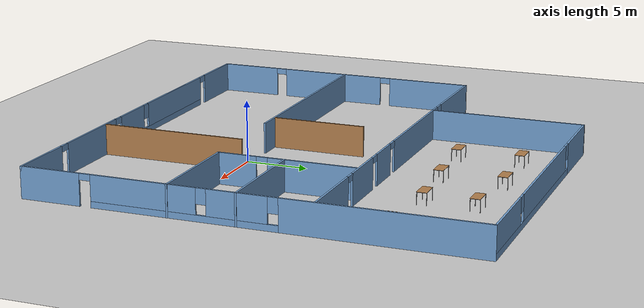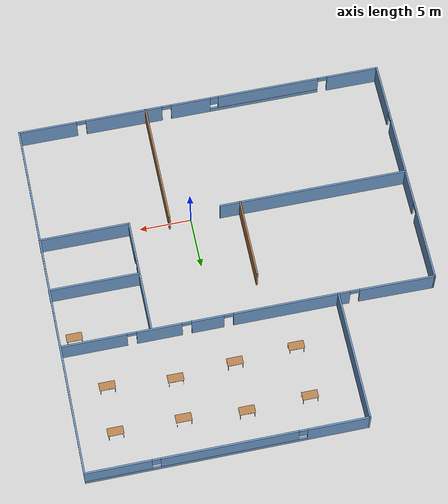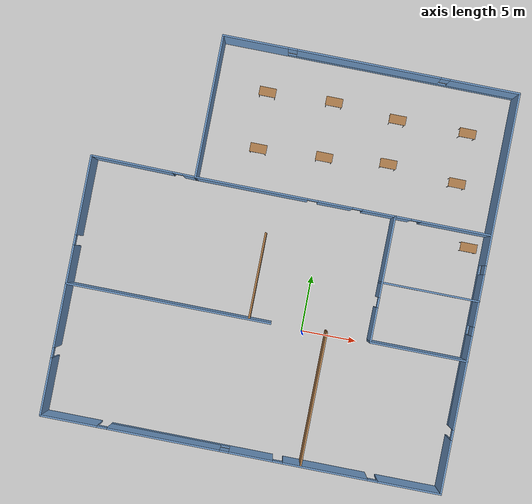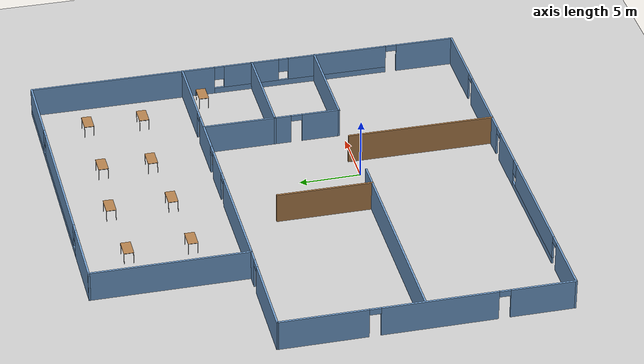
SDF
<sdf version="1.6">
 <world name="default">
  <model name="ground_plane">
   <static>1</static>
   <link name="link">
    <collision name="collision">
     <geometry><plane><normal>0 0 1</normal><size>100 100</size></plane></geometry>
     <surface><friction><ode><mu>100</mu><mu2>50</mu2></ode></friction></surface>
    </collision>
    <visual name="visual">
     <cast_shadows>0</cast_shadows>
     <geometry><plane><normal>0 0 1</normal><size>100 100</size></plane></geometry>
     <material>
      <script><uri>file://media/materials/scripts/gazebo.material</uri><name>Gazebo/Grey</name></script>
     </material>
    </visual>
   </link>
  </model>
  <model name="myhouse">
   <pose>-3.19949 6.33 0 0 -0 0</pose>
   <link name="Wall_0">
    <pose>4.61426 17.8 0 0 -0 0</pose>
    <visual name="Wall_0_Visual_0">
     <pose>-10.3159 0 1.25 0 -0 0</pose>
     <geometry><box><size>5.86818 0.15 2.5</size></box></geometry>
     <material>
      <script><uri>file://media/materials/scripts/gazebo.material</uri><name>Gazebo/Grey</name></script>
      <ambient>0.447059 0.623529 0.811765 1</ambient>
     </material>
     <meta><layer>0</layer></meta>
    </visual>
    <collision name="Wall_0_Collision_0">
     <geometry><box><size>5.86818 0.15 2.5</size></box></geometry>
     <pose>-10.3159 0 1.25 0 -0 0</pose>
    </collision>
    <visual name="Wall_0_Visual_1">
     <pose>2.93409 0 0.25 0 -0 0</pose>
     <geometry><box><size>20.6318 0.15 0.5</size></box></geometry>
     <material>
      <script><uri>file://media/materials/scripts/gazebo.material</uri><name>Gazebo/Grey</name></script>
      <ambient>0.447059 0.623529 0.811765 1</ambient>
     </material>
     <meta><layer>0</layer></meta>
    </visual>
    <collision name="Wall_0_Collision_1">
     <geometry><box><size>20.6318 0.15 0.5</size></box></geometry>
     <pose>2.93409 0 0.25 0 -0 0</pose>
    </collision>
    <visual name="Wall_0_Visual_2">
     <pose>-0.192398 0 1.5 0 -0 0</pose>
     <geometry><box><size>12.7788 0.15 2</size></box></geometry>
     <material>
      <script><uri>file://media/materials/scripts/gazebo.material</uri><name>Gazebo/Grey</name></script>
      <ambient>0.447059 0.623529 0.811765 1</ambient>
     </material>
     <meta><layer>0</layer></meta>
    </visual>
    <collision name="Wall_0_Collision_2">
     <geometry><box><size>12.7788 0.15 2</size></box></geometry>
     <pose>-0.192398 0 1.5 0 -0 0</pose>
    </collision>
    <visual name="Wall_0_Visual_3">
     <pose>10.1235 0 1.5 0 -0 0</pose>
     <geometry><box><size>6.25298 0.15 2</size></box></geometry>
     <material>
      <script><uri>file://media/materials/scripts/gazebo.material</uri><name>Gazebo/Grey</name></script>
      <ambient>0.447059 0.623529 0.811765 1</ambient>
     </material>
     <meta><layer>0</layer></meta>
    </visual>
    <collision name="Wall_0_Collision_3">
     <geometry><box><size>6.25298 0.15 2</size></box></geometry>
     <pose>10.1235 0 1.5 0 -0 0</pose>
    </collision>
    <visual name="Wall_0_Visual_4">
     <pose>-6.98182 0 1.9 0 -0 0</pose>
     <geometry><box><size>0.8 0.15 1.2</size></box></geometry>
     <material>
      <script><uri>file://media/materials/scripts/gazebo.material</uri><name>Gazebo/Grey</name></script>
      <ambient>0.447059 0.623529 0.811765 1</ambient>
     </material>
     <meta><layer>0</layer></meta>
    </visual>
    <collision name="Wall_0_Collision_4">
     <geometry><box><size>0.8 0.15 1.2</size></box></geometry>
     <pose>-6.98182 0 1.9 0 -0 0</pose>
    </collision>
    <visual name="Wall_0_Visual_5">
     <pose>6.59703 0 1.9 0 -0 0</pose>
     <geometry><box><size>0.8 0.15 1.2</size></box></geometry>
     <material>
      <script><uri>file://media/materials/scripts/gazebo.material</uri><name>Gazebo/Grey</name></script>
      <ambient>0.447059 0.623529 0.811765 1</ambient>
     </material>
     <meta><layer>0</layer></meta>
    </visual>
    <collision name="Wall_0_Collision_5">
     <geometry><box><size>0.8 0.15 1.2</size></box></geometry>
     <pose>6.59703 0 1.9 0 -0 0</pose>
    </collision>
   </link>
   <link name="Wall_1">
    <pose>17.7893 -0 0 0 -0 -1.5708</pose>
    <visual name="Wall_1_Visual_0">
     <pose>-10.1951 0 1.25 0 -0 0</pose>
     <geometry><box><size>15.3597 0.15 2.5</size></box></geometry>
     <material>
      <script><uri>file://media/materials/scripts/gazebo.material</uri><name>Gazebo/Grey</name></script>
      <ambient>0.447059 0.623529 0.811765 1</ambient>
     </material>
     <meta><layer>0</layer></meta>
    </visual>
    <collision name="Wall_1_Collision_0">
     <geometry><box><size>15.3597 0.15 2.5</size></box></geometry>
     <pose>-10.1951 0 1.25 0 -0 0</pose>
    </collision>
    <visual name="Wall_1_Visual_1">
     <pose>15.4336 0 1.25 0 -0 0</pose>
     <geometry><box><size>4.88286 0.15 2.5</size></box></geometry>
     <material>
      <script><uri>file://media/materials/scripts/gazebo.material</uri><name>Gazebo/Grey</name></script>
      <ambient>0.447059 0.623529 0.811765 1</ambient>
     </material>
     <meta><layer>0</layer></meta>
    </visual>
    <collision name="Wall_1_Collision_1">
     <geometry><box><size>4.88286 0.15 2.5</size></box></geometry>
     <pose>15.4336 0 1.25 0 -0 0</pose>
    </collision>
    <visual name="Wall_1_Visual_2">
     <pose>4.78844 0 0.25 0 -0 0</pose>
     <geometry><box><size>14.6074 0.15 0.5</size></box></geometry>
     <material>
      <script><uri>file://media/materials/scripts/gazebo.material</uri><name>Gazebo/Grey</name></script>
      <ambient>0.447059 0.623529 0.811765 1</ambient>
     </material>
     <meta><layer>0</layer></meta>
    </visual>
    <collision name="Wall_1_Collision_2">
     <geometry><box><size>14.6074 0.15 0.5</size></box></geometry>
     <pose>4.78844 0 0.25 0 -0 0</pose>
    </collision>
    <visual name="Wall_1_Visual_3">
     <pose>0.613666 0 1.5 0 -0 0</pose>
     <geometry><box><size>4.65784 0.15 2</size></box></geometry>
     <material>
      <script><uri>file://media/materials/scripts/gazebo.material</uri><name>Gazebo/Grey</name></script>
      <ambient>0.447059 0.623529 0.811765 1</ambient>
     </material>
     <meta><layer>0</layer></meta>
    </visual>
    <collision name="Wall_1_Collision_3">
     <geometry><box><size>4.65784 0.15 2</size></box></geometry>
     <pose>0.613666 0 1.5 0 -0 0</pose>
    </collision>
    <visual name="Wall_1_Visual_4">
     <pose>7.91736 0 1.5 0 -0 0</pose>
     <geometry><box><size>8.34956 0.15 2</size></box></geometry>
     <material>
      <script><uri>file://media/materials/scripts/gazebo.material</uri><name>Gazebo/Grey</name></script>
      <ambient>0.447059 0.623529 0.811765 1</ambient>
     </material>
     <meta><layer>0</layer></meta>
    </visual>
    <collision name="Wall_1_Collision_4">
     <geometry><box><size>8.34956 0.15 2</size></box></geometry>
     <pose>7.91736 0 1.5 0 -0 0</pose>
    </collision>
    <visual name="Wall_1_Visual_5">
     <pose>-2.11525 0 1.9 0 -0 0</pose>
     <geometry><box><size>0.8 0.15 1.2</size></box></geometry>
     <material>
      <script><uri>file://media/materials/scripts/gazebo.material</uri><name>Gazebo/Grey</name></script>
      <ambient>0.447059 0.623529 0.811765 1</ambient>
     </material>
     <meta><layer>0</layer></meta>
    </visual>
    <collision name="Wall_1_Collision_5">
     <geometry><box><size>0.8 0.15 1.2</size></box></geometry>
     <pose>-2.11525 0 1.9 0 -0 0</pose>
    </collision>
    <visual name="Wall_1_Visual_6">
     <pose>3.34259 0 1.9 0 -0 0</pose>
     <geometry><box><size>0.8 0.15 1.2</size></box></geometry>
     <material>
      <script><uri>file://media/materials/scripts/gazebo.material</uri><name>Gazebo/Grey</name></script>
      <ambient>0.447059 0.623529 0.811765 1</ambient>
     </material>
     <meta><layer>0</layer></meta>
    </visual>
    <collision name="Wall_1_Collision_6">
     <geometry><box><size>0.8 0.15 1.2</size></box></geometry>
     <pose>3.34259 0 1.9 0 -0 0</pose>
    </collision>
    <visual name="Wall_1_Visual_7">
     <pose>12.5421 0 2.25 0 -0 0</pose>
     <geometry><box><size>0.9 0.15 0.5</size></box></geometry>
     <material>
      <script><uri>file://media/materials/scripts/gazebo.material</uri><name>Gazebo/Grey</name></script>
      <ambient>0.447059 0.623529 0.811765 1</ambient>
     </material>
     <meta><layer>0</layer></meta>
    </visual>
    <collision name="Wall_1_Collision_7">
     <geometry><box><size>0.9 0.15 0.5</size></box></geometry>
     <pose>12.5421 0 2.25 0 -0 0</pose>
    </collision>
   </link>
   <link name="Wall_10">
    <pose>9.21154 -0.400105 0 0 -0 -1.5708</pose>
    <visual name="Wall_10_Visual_0">
     <pose>-2.03081 0 1.25 0 -0 0</pose>
     <geometry><box><size>7.26684 0.15 2.5</size></box></geometry>
     <material>
      <script><uri>file://media/materials/scripts/gazebo.material</uri><name>Gazebo/Grey</name></script>
      <ambient>0.447059 0.623529 0.811765 1</ambient>
     </material>
     <meta><layer>0</layer></meta>
    </visual>
    <collision name="Wall_10_Collision_0">
     <geometry><box><size>7.26684 0.15 2.5</size></box></geometry>
     <pose>-2.03081 0 1.25 0 -0 0</pose>
    </collision>
    <visual name="Wall_10_Visual_1">
     <pose>4.08342 0 1.25 0 -0 0</pose>
     <geometry><box><size>3.16161 0.15 2.5</size></box></geometry>
     <material>
      <script><uri>file://media/materials/scripts/gazebo.material</uri><name>Gazebo/Grey</name></script>
      <ambient>0.447059 0.623529 0.811765 1</ambient>
     </material>
     <meta><layer>0</layer></meta>
    </visual>
    <collision name="Wall_10_Collision_1">
     <geometry><box><size>3.16161 0.15 2.5</size></box></geometry>
     <pose>4.08342 0 1.25 0 -0 0</pose>
    </collision>
    <visual name="Wall_10_Visual_2">
     <pose>2.05262 0 2.25 0 -0 0</pose>
     <geometry><box><size>0.9 0.15 0.5</size></box></geometry>
     <material>
      <script><uri>file://media/materials/scripts/gazebo.material</uri><name>Gazebo/Grey</name></script>
      <ambient>0.447059 0.623529 0.811765 1</ambient>
     </material>
     <meta><layer>0</layer></meta>
    </visual>
    <collision name="Wall_10_Collision_2">
     <geometry><box><size>0.9 0.15 0.5</size></box></geometry>
     <pose>2.05262 0 2.25 0 -0 0</pose>
    </collision>
   </link>
   <link name="Wall_13">
    <collision name="Wall_13_Collision">
     <geometry><box><size>8.75 0.15 2.5</size></box></geometry>
     <pose>0 0 1.25 0 -0 0</pose>
    </collision>
    <visual name="Wall_13_Visual">
     <pose>0 0 1.25 0 -0 0</pose>
     <geometry><box><size>8.75 0.15 2.5</size></box></geometry>
     <material>
      <script><uri>file://media/materials/scripts/gazebo.material</uri><name>Gazebo/Grey</name></script>
      <ambient>0.447059 0.623529 0.811765 1</ambient>
     </material>
     <meta><layer>0</layer></meta>
    </visual>
    <pose>13.5115 -5.98933 0 0 -0 0</pose>
   </link>
   <link name="Wall_15">
    <collision name="Wall_15_Collision">
     <geometry><box><size>8.75 0.15 2.5</size></box></geometry>
     <pose>0 0 1.25 0 -0 0</pose>
    </collision>
    <visual name="Wall_15_Visual">
     <pose>0 0 1.25 0 -0 0</pose>
     <geometry><box><size>8.75 0.15 2.5</size></box></geometry>
     <material>
      <script><uri>file://media/materials/scripts/gazebo.material</uri><name>Gazebo/Grey</name></script>
      <ambient>0.447059 0.623529 0.811765 1</ambient>
     </material>
     <meta><layer>0</layer></meta>
    </visual>
    <pose>13.5114 -0.669808 0 0 -0 0</pose>
   </link>
   <link name="Wall_17">
    <collision name="Wall_17_Collision">
     <geometry><box><size>18.25 0.15 2.5</size></box></geometry>
     <pose>0 0 1.25 0 -0 0</pose>
    </collision>
    <visual name="Wall_17_Visual">
     <pose>0 0 1.25 0 -0 0</pose>
     <geometry><box><size>18.25 0.15 2.5</size></box></geometry>
     <material>
      <script><uri>file://media/materials/scripts/gazebo.material</uri><name>Gazebo/Grey</name></script>
      <ambient>0.447059 0.623529 0.811765 1</ambient>
     </material>
     <meta><layer>0</layer></meta>
    </visual>
    <pose>-8.72356 -6.06182 0 0 -0 0</pose>
   </link>
   <link name="Wall_19">
    <collision name="Wall_19_Collision">
     <geometry><box><size>7.75 0.15 2.5</size></box></geometry>
     <pose>0 0 1.25 0 -0 0</pose>
    </collision>
    <visual name="Wall_19_Visual">
     <pose>0 0 1.25 0 -0 0</pose>
     <geometry><box><size>7.75 0.15 2.5</size></box></geometry>
     <material>
      <script><uri>file://media/materials/scripts/gazebo.material</uri><name>Gazebo/Wood</name></script>
      <ambient>1 1 1 1</ambient>
     </material>
     <meta><layer>0</layer></meta>
    </visual>
    <pose>-1.57819 -2.2167 0 0 -0 1.5708</pose>
   </link>
   <link name="Wall_2">
    <pose>-0.010735 -17.8 0 0 -0 3.14159</pose>
    <visual name="Wall_2_Visual_0">
     <pose>-15.0259 0 1.25 0 -0 0</pose>
     <geometry><box><size>5.69813 0.15 2.5</size></box></geometry>
     <material>
      <script><uri>file://media/materials/scripts/gazebo.material</uri><name>Gazebo/Grey</name></script>
      <ambient>0.447059 0.623529 0.811765 1</ambient>
     </material>
     <meta><layer>0</layer></meta>
    </visual>
    <collision name="Wall_2_Collision_0">
     <geometry><box><size>5.69813 0.15 2.5</size></box></geometry>
     <pose>-15.0259 0 1.25 0 -0 0</pose>
    </collision>
    <visual name="Wall_2_Visual_1">
     <pose>-7.50561 0 1.25 0 -0 0</pose>
     <geometry><box><size>7.54251 0.15 2.5</size></box></geometry>
     <material>
      <script><uri>file://media/materials/scripts/gazebo.material</uri><name>Gazebo/Grey</name></script>
      <ambient>0.447059 0.623529 0.811765 1</ambient>
     </material>
     <meta><layer>0</layer></meta>
    </visual>
    <collision name="Wall_2_Collision_1">
     <geometry><box><size>7.54251 0.15 2.5</size></box></geometry>
     <pose>-7.50561 0 1.25 0 -0 0</pose>
    </collision>
    <visual name="Wall_2_Visual_2">
     <pose>-0.885398 0 1.25 0 -0 0</pose>
     <geometry><box><size>3.89792 0.15 2.5</size></box></geometry>
     <material>
      <script><uri>file://media/materials/scripts/gazebo.material</uri><name>Gazebo/Grey</name></script>
      <ambient>0.447059 0.623529 0.811765 1</ambient>
     </material>
     <meta><layer>0</layer></meta>
    </visual>
    <collision name="Wall_2_Collision_2">
     <geometry><box><size>3.89792 0.15 2.5</size></box></geometry>
     <pose>-0.885398 0 1.25 0 -0 0</pose>
    </collision>
    <visual name="Wall_2_Visual_3">
     <pose>15.3234 0 1.25 0 -0 0</pose>
     <geometry><box><size>5.10327 0.15 2.5</size></box></geometry>
     <material>
      <script><uri>file://media/materials/scripts/gazebo.material</uri><name>Gazebo/Grey</name></script>
      <ambient>0.447059 0.623529 0.811765 1</ambient>
     </material>
     <meta><layer>0</layer></meta>
    </visual>
    <collision name="Wall_2_Collision_3">
     <geometry><box><size>5.10327 0.15 2.5</size></box></geometry>
     <pose>15.3234 0 1.25 0 -0 0</pose>
    </collision>
    <visual name="Wall_2_Visual_4">
     <pose>6.46765 0 0.25 0 -0 0</pose>
     <geometry><box><size>10.8082 0.15 0.5</size></box></geometry>
     <material>
      <script><uri>file://media/materials/scripts/gazebo.material</uri><name>Gazebo/Grey</name></script>
      <ambient>0.447059 0.623529 0.811765 1</ambient>
     </material>
     <meta><layer>0</layer></meta>
    </visual>
    <collision name="Wall_2_Collision_4">
     <geometry><box><size>10.8082 0.15 0.5</size></box></geometry>
     <pose>6.46765 0 0.25 0 -0 0</pose>
    </collision>
    <visual name="Wall_2_Visual_5">
     <pose>6.86765 0 1.5 0 -0 0</pose>
     <geometry><box><size>10.0082 0.15 2</size></box></geometry>
     <material>
      <script><uri>file://media/materials/scripts/gazebo.material</uri><name>Gazebo/Grey</name></script>
      <ambient>0.447059 0.623529 0.811765 1</ambient>
     </material>
     <meta><layer>0</layer></meta>
    </visual>
    <collision name="Wall_2_Collision_5">
     <geometry><box><size>10.0082 0.15 2</size></box></geometry>
     <pose>6.86765 0 1.5 0 -0 0</pose>
    </collision>
    <visual name="Wall_2_Visual_6">
     <pose>1.46356 0 1.9 0 -0 0</pose>
     <geometry><box><size>0.8 0.15 1.2</size></box></geometry>
     <material>
      <script><uri>file://media/materials/scripts/gazebo.material</uri><name>Gazebo/Grey</name></script>
      <ambient>0.447059 0.623529 0.811765 1</ambient>
     </material>
     <meta><layer>0</layer></meta>
    </visual>
    <collision name="Wall_2_Collision_6">
     <geometry><box><size>0.8 0.15 1.2</size></box></geometry>
     <pose>1.46356 0 1.9 0 -0 0</pose>
    </collision>
    <visual name="Wall_2_Visual_7">
     <pose>-11.7269 0 2.25 0 -0 0</pose>
     <geometry><box><size>0.9 0.15 0.5</size></box></geometry>
     <material>
      <script><uri>file://media/materials/scripts/gazebo.material</uri><name>Gazebo/Grey</name></script>
      <ambient>0.447059 0.623529 0.811765 1</ambient>
     </material>
     <meta><layer>0</layer></meta>
    </visual>
    <collision name="Wall_2_Collision_7">
     <geometry><box><size>0.9 0.15 0.5</size></box></geometry>
     <pose>-11.7269 0 2.25 0 -0 0</pose>
    </collision>
    <visual name="Wall_2_Visual_8">
     <pose>-3.28436 0 2.25 0 -0 0</pose>
     <geometry><box><size>0.9 0.15 0.5</size></box></geometry>
     <material>
      <script><uri>file://media/materials/scripts/gazebo.material</uri><name>Gazebo/Grey</name></script>
      <ambient>0.447059 0.623529 0.811765 1</ambient>
     </material>
     <meta><layer>0</layer></meta>
    </visual>
    <collision name="Wall_2_Collision_8">
     <geometry><box><size>0.9 0.15 0.5</size></box></geometry>
     <pose>-3.28436 0 2.25 0 -0 0</pose>
    </collision>
    <visual name="Wall_2_Visual_9">
     <pose>12.3217 0 2.25 0 -0 0</pose>
     <geometry><box><size>0.9 0.15 0.5</size></box></geometry>
     <material>
      <script><uri>file://media/materials/scripts/gazebo.material</uri><name>Gazebo/Grey</name></script>
      <ambient>0.447059 0.623529 0.811765 1</ambient>
     </material>
     <meta><layer>0</layer></meta>
    </visual>
    <collision name="Wall_2_Collision_9">
     <geometry><box><size>0.9 0.15 0.5</size></box></geometry>
     <pose>12.3217 0 2.25 0 -0 0</pose>
    </collision>
   </link>
   <link name="Wall_23">
    <collision name="Wall_23_Collision">
     <geometry><box><size>12 0.15 2.5</size></box></geometry>
     <pose>0 0 1.25 0 -0 0</pose>
    </collision>
    <visual name="Wall_23_Visual">
     <pose>0 0 1.25 0 -0 0</pose>
     <geometry><box><size>12 0.15 2.5</size></box></geometry>
     <material>
      <script><uri>file://media/materials/scripts/gazebo.material</uri><name>Gazebo/Wood</name></script>
      <ambient>1 1 1 1</ambient>
     </material>
     <meta><layer>0</layer></meta>
    </visual>
    <pose>5.32796 -11.8207 0 0 -0 1.5708</pose>
   </link>
   <link name="Wall_3">
    <pose>-17.8107 -6.25 0 0 -0 1.5708</pose>
    <visual name="Wall_3_Visual_0">
     <pose>-9.02802 0 1.25 0 -0 0</pose>
     <geometry><box><size>5.19397 0.15 2.5</size></box></geometry>
     <material>
      <script><uri>file://media/materials/scripts/gazebo.material</uri><name>Gazebo/Grey</name></script>
      <ambient>0.447059 0.623529 0.811765 1</ambient>
     </material>
     <meta><layer>0</layer></meta>
    </visual>
    <collision name="Wall_3_Collision_0">
     <geometry><box><size>5.19397 0.15 2.5</size></box></geometry>
     <pose>-9.02802 0 1.25 0 -0 0</pose>
    </collision>
    <visual name="Wall_3_Visual_1">
     <pose>-0.961315 0 1.25 0 -0 0</pose>
     <geometry><box><size>9.13944 0.15 2.5</size></box></geometry>
     <material>
      <script><uri>file://media/materials/scripts/gazebo.material</uri><name>Gazebo/Grey</name></script>
      <ambient>0.447059 0.623529 0.811765 1</ambient>
     </material>
     <meta><layer>0</layer></meta>
    </visual>
    <collision name="Wall_3_Collision_1">
     <geometry><box><size>9.13944 0.15 2.5</size></box></geometry>
     <pose>-0.961315 0 1.25 0 -0 0</pose>
    </collision>
    <visual name="Wall_3_Visual_2">
     <pose>8.0667 0 1.25 0 -0 0</pose>
     <geometry><box><size>7.1166 0.15 2.5</size></box></geometry>
     <material>
      <script><uri>file://media/materials/scripts/gazebo.material</uri><name>Gazebo/Grey</name></script>
      <ambient>0.447059 0.623529 0.811765 1</ambient>
     </material>
     <meta><layer>0</layer></meta>
    </visual>
    <collision name="Wall_3_Collision_2">
     <geometry><box><size>7.1166 0.15 2.5</size></box></geometry>
     <pose>8.0667 0 1.25 0 -0 0</pose>
    </collision>
    <visual name="Wall_3_Visual_3">
     <pose>-5.98103 0 2.25 0 -0 0</pose>
     <geometry><box><size>0.9 0.15 0.5</size></box></geometry>
     <material>
      <script><uri>file://media/materials/scripts/gazebo.material</uri><name>Gazebo/Grey</name></script>
      <ambient>0.447059 0.623529 0.811765 1</ambient>
     </material>
     <meta><layer>0</layer></meta>
    </visual>
    <collision name="Wall_3_Collision_3">
     <geometry><box><size>0.9 0.15 0.5</size></box></geometry>
     <pose>-5.98103 0 2.25 0 -0 0</pose>
    </collision>
    <visual name="Wall_3_Visual_4">
     <pose>4.0584 0 2.25 0 -0 0</pose>
     <geometry><box><size>0.9 0.15 0.5</size></box></geometry>
     <material>
      <script><uri>file://media/materials/scripts/gazebo.material</uri><name>Gazebo/Grey</name></script>
      <ambient>0.447059 0.623529 0.811765 1</ambient>
     </material>
     <meta><layer>0</layer></meta>
    </visual>
    <collision name="Wall_3_Collision_4">
     <geometry><box><size>0.9 0.15 0.5</size></box></geometry>
     <pose>4.0584 0 2.25 0 -0 0</pose>
    </collision>
   </link>
   <link name="Wall_5">
    <collision name="Wall_5_Collision">
     <geometry><box><size>12.75 0.15 2.5</size></box></geometry>
     <pose>0 0 1.25 0 -0 0</pose>
    </collision>
    <visual name="Wall_5_Visual">
     <pose>0 0 1.25 0 -0 0</pose>
     <geometry><box><size>12.75 0.15 2.5</size></box></geometry>
     <material>
      <script><uri>file://media/materials/scripts/gazebo.material</uri><name>Gazebo/Grey</name></script>
      <ambient>0.447059 0.623529 0.811765 1</ambient>
     </material>
     <meta><layer>0</layer></meta>
    </visual>
    <pose>-8.56073 11.5 0 0 -0 -1.5708</pose>
   </link>
   <link name="Wall_6">
    <pose>-13.1857 5.25 0 0 -0 3.13078</pose>
    <visual name="Wall_6_Visual_0">
     <pose>-4.09582 0 1.25 0 -0 0</pose>
     <geometry><box><size>1.2089 0.15 2.5</size></box></geometry>
     <material>
      <script><uri>file://media/materials/scripts/gazebo.material</uri><name>Gazebo/Grey</name></script>
      <ambient>0.447059 0.623529 0.811765 1</ambient>
     </material>
     <meta><layer>0</layer></meta>
    </visual>
    <collision name="Wall_6_Collision_0">
     <geometry><box><size>1.2089 0.15 2.5</size></box></geometry>
     <pose>-4.09582 0 1.25 0 -0 0</pose>
    </collision>
    <visual name="Wall_6_Visual_1">
     <pose>1.05445 0 1.25 0 -0 0</pose>
     <geometry><box><size>7.29164 0.15 2.5</size></box></geometry>
     <material>
      <script><uri>file://media/materials/scripts/gazebo.material</uri><name>Gazebo/Grey</name></script>
      <ambient>0.447059 0.623529 0.811765 1</ambient>
     </material>
     <meta><layer>0</layer></meta>
    </visual>
    <collision name="Wall_6_Collision_1">
     <geometry><box><size>7.29164 0.15 2.5</size></box></geometry>
     <pose>1.05445 0 1.25 0 -0 0</pose>
    </collision>
    <visual name="Wall_6_Visual_2">
     <pose>-3.04137 0 2.25 0 -0 0</pose>
     <geometry><box><size>0.9 0.15 0.5</size></box></geometry>
     <material>
      <script><uri>file://media/materials/scripts/gazebo.material</uri><name>Gazebo/Grey</name></script>
      <ambient>0.447059 0.623529 0.811765 1</ambient>
     </material>
     <meta><layer>0</layer></meta>
    </visual>
    <collision name="Wall_6_Collision_2">
     <geometry><box><size>0.9 0.15 0.5</size></box></geometry>
     <pose>-3.04137 0 2.25 0 -0 0</pose>
    </collision>
   </link>
   <link name="Wall_8">
    <pose>4.61426 5.2 0 0 -0 0</pose>
    <visual name="Wall_8_Visual_0">
     <pose>-8.20743 0 1.25 0 -0 0</pose>
     <geometry><box><size>10.0851 0.15 2.5</size></box></geometry>
     <material>
      <script><uri>file://media/materials/scripts/gazebo.material</uri><name>Gazebo/Grey</name></script>
      <ambient>0.447059 0.623529 0.811765 1</ambient>
     </material>
     <meta><layer>0</layer></meta>
    </visual>
    <collision name="Wall_8_Collision_0">
     <geometry><box><size>10.0851 0.15 2.5</size></box></geometry>
     <pose>-8.20743 0 1.25 0 -0 0</pose>
    </collision>
    <visual name="Wall_8_Visual_1">
     <pose>-0.725872 0 1.25 0 -0 0</pose>
     <geometry><box><size>3.07799 0.15 2.5</size></box></geometry>
     <material>
      <script><uri>file://media/materials/scripts/gazebo.material</uri><name>Gazebo/Grey</name></script>
      <ambient>0.447059 0.623529 0.811765 1</ambient>
     </material>
     <meta><layer>0</layer></meta>
    </visual>
    <collision name="Wall_8_Collision_1">
     <geometry><box><size>3.07799 0.15 2.5</size></box></geometry>
     <pose>-0.725872 0 1.25 0 -0 0</pose>
    </collision>
    <visual name="Wall_8_Visual_2">
     <pose>3.86689 0 1.25 0 -0 0</pose>
     <geometry><box><size>4.30753 0.15 2.5</size></box></geometry>
     <material>
      <script><uri>file://media/materials/scripts/gazebo.material</uri><name>Gazebo/Grey</name></script>
      <ambient>0.447059 0.623529 0.811765 1</ambient>
     </material>
     <meta><layer>0</layer></meta>
    </visual>
    <collision name="Wall_8_Collision_2">
     <geometry><box><size>4.30753 0.15 2.5</size></box></geometry>
     <pose>3.86689 0 1.25 0 -0 0</pose>
    </collision>
    <visual name="Wall_8_Visual_3">
     <pose>10.0853 0 1.25 0 -0 0</pose>
     <geometry><box><size>6.32935 0.15 2.5</size></box></geometry>
     <material>
      <script><uri>file://media/materials/scripts/gazebo.material</uri><name>Gazebo/Grey</name></script>
      <ambient>0.447059 0.623529 0.811765 1</ambient>
     </material>
     <meta><layer>0</layer></meta>
    </visual>
    <collision name="Wall_8_Collision_3">
     <geometry><box><size>6.32935 0.15 2.5</size></box></geometry>
     <pose>10.0853 0 1.25 0 -0 0</pose>
    </collision>
    <visual name="Wall_8_Visual_4">
     <pose>-2.71487 0 2.25 0 -0 0</pose>
     <geometry><box><size>0.9 0.15 0.5</size></box></geometry>
     <material>
      <script><uri>file://media/materials/scripts/gazebo.material</uri><name>Gazebo/Grey</name></script>
      <ambient>0.447059 0.623529 0.811765 1</ambient>
     </material>
     <meta><layer>0</layer></meta>
    </visual>
    <collision name="Wall_8_Collision_4">
     <geometry><box><size>0.9 0.15 0.5</size></box></geometry>
     <pose>-2.71487 0 2.25 0 -0 0</pose>
    </collision>
    <visual name="Wall_8_Visual_5">
     <pose>1.26312 0 2.25 0 -0 0</pose>
     <geometry><box><size>0.9 0.15 0.5</size></box></geometry>
     <material>
      <script><uri>file://media/materials/scripts/gazebo.material</uri><name>Gazebo/Grey</name></script>
      <ambient>0.447059 0.623529 0.811765 1</ambient>
     </material>
     <meta><layer>0</layer></meta>
    </visual>
    <collision name="Wall_8_Collision_5">
     <geometry><box><size>0.9 0.15 0.5</size></box></geometry>
     <pose>1.26312 0 2.25 0 -0 0</pose>
    </collision>
    <visual name="Wall_8_Visual_6">
     <pose>6.47065 0 2.25 0 -0 0</pose>
     <geometry><box><size>0.9 0.15 0.5</size></box></geometry>
     <material>
      <script><uri>file://media/materials/scripts/gazebo.material</uri><name>Gazebo/Grey</name></script>
      <ambient>0.447059 0.623529 0.811765 1</ambient>
     </material>
     <meta><layer>0</layer></meta>
    </visual>
    <collision name="Wall_8_Collision_6">
     <geometry><box><size>0.9 0.15 0.5</size></box></geometry>
     <pose>6.47065 0 2.25 0 -0 0</pose>
    </collision>
   </link>
   <static>1</static>
  </model>
  <model name="table_2">
   <static>1</static>
   <link name="link">
    <collision name="surface">
     <pose>0 0 1 0 -0 0</pose>
     <geometry><box><size>1.5 0.8 0.03</size></box></geometry>
     <surface><friction><ode><mu>0.6</mu><mu2>0.6</mu2></ode></friction></surface>
    </collision>
    <visual name="visual1">
     <pose>0 0 1 0 -0 0</pose>
     <geometry><box><size>1.5 0.8 0.03</size></box></geometry>
     <material>
      <script><uri>file://media/materials/scripts/gazebo.material</uri><name>Gazebo/Wood</name></script>
     </material>
    </visual>
    <collision name="front_left_leg">
     <pose>0.68 0.38 0.5 0 -0 0</pose>
     <geometry><cylinder><radius>0.02</radius><length>1</length></cylinder></geometry>
    </collision>
    <visual name="front_left_leg">
     <pose>0.68 0.38 0.5 0 -0 0</pose>
     <geometry><cylinder><radius>0.02</radius><length>1</length></cylinder></geometry>
     <material>
      <script><uri>file://media/materials/scripts/gazebo.material</uri><name>Gazebo/Grey</name></script>
     </material>
    </visual>
    <collision name="front_right_leg">
     <pose>0.68 -0.38 0.5 0 -0 0</pose>
     <geometry><cylinder><radius>0.02</radius><length>1</length></cylinder></geometry>
    </collision>
    <visual name="front_right_leg">
     <pose>0.68 -0.38 0.5 0 -0 0</pose>
     <geometry><cylinder><radius>0.02</radius><length>1</length></cylinder></geometry>
     <material>
      <script><uri>file://media/materials/scripts/gazebo.material</uri><name>Gazebo/Grey</name></script>
     </material>
    </visual>
    <collision name="back_right_leg">
     <pose>-0.68 -0.38 0.5 0 -0 0</pose>
     <geometry><cylinder><radius>0.02</radius><length>1</length></cylinder></geometry>
    </collision>
    <visual name="back_right_leg">
     <pose>-0.68 -0.38 0.5 0 -0 0</pose>
     <geometry><cylinder><radius>0.02</radius><length>1</length></cylinder></geometry>
     <material>
      <script><uri>file://media/materials/scripts/gazebo.material</uri><name>Gazebo/Grey</name></script>
     </material>
    </visual>
    <collision name="back_left_leg">
     <pose>-0.68 0.38 0.5 0 -0 0</pose>
     <geometry><cylinder><radius>0.02</radius><length>1</length></cylinder></geometry>
    </collision>
    <visual name="back_left_leg">
     <pose>-0.68 0.38 0.5 0 -0 0</pose>
     <geometry><cylinder><radius>0.02</radius><length>1</length></cylinder></geometry>
     <material>
      <script><uri>file://media/materials/scripts/gazebo.material</uri><name>Gazebo/Grey</name></script>
     </material>
    </visual>
   </link>
   <pose>13.1299 10.1962 0 0 -0 0</pose>
  </model>
  <model name="table_3">
   <static>1</static>
   <link name="link">
    <collision name="surface">
     <pose>0 0 1 0 -0 0</pose>
     <geometry><box><size>1.5 0.8 0.03</size></box></geometry>
     <surface><friction><ode><mu>0.6</mu><mu2>0.6</mu2></ode></friction></surface>
    </collision>
    <visual name="visual1">
     <pose>0 0 1 0 -0 0</pose>
     <geometry><box><size>1.5 0.8 0.03</size></box></geometry>
     <material>
      <script><uri>file://media/materials/scripts/gazebo.material</uri><name>Gazebo/Wood</name></script>
     </material>
    </visual>
    <collision name="front_left_leg">
     <pose>0.68 0.38 0.5 0 -0 0</pose>
     <geometry><cylinder><radius>0.02</radius><length>1</length></cylinder></geometry>
    </collision>
    <visual name="front_left_leg">
     <pose>0.68 0.38 0.5 0 -0 0</pose>
     <geometry><cylinder><radius>0.02</radius><length>1</length></cylinder></geometry>
     <material>
      <script><uri>file://media/materials/scripts/gazebo.material</uri><name>Gazebo/Grey</name></script>
     </material>
    </visual>
    <collision name="front_right_leg">
     <pose>0.68 -0.38 0.5 0 -0 0</pose>
     <geometry><cylinder><radius>0.02</radius><length>1</length></cylinder></geometry>
    </collision>
    <visual name="front_right_leg">
     <pose>0.68 -0.38 0.5 0 -0 0</pose>
     <geometry><cylinder><radius>0.02</radius><length>1</length></cylinder></geometry>
     <material>
      <script><uri>file://media/materials/scripts/gazebo.material</uri><name>Gazebo/Grey</name></script>
     </material>
    </visual>
    <collision name="back_right_leg">
     <pose>-0.68 -0.38 0.5 0 -0 0</pose>
     <geometry><cylinder><radius>0.02</radius><length>1</length></cylinder></geometry>
    </collision>
    <visual name="back_right_leg">
     <pose>-0.68 -0.38 0.5 0 -0 0</pose>
     <geometry><cylinder><radius>0.02</radius><length>1</length></cylinder></geometry>
     <material>
      <script><uri>file://media/materials/scripts/gazebo.material</uri><name>Gazebo/Grey</name></script>
     </material>
    </visual>
    <collision name="back_left_leg">
     <pose>-0.68 0.38 0.5 0 -0 0</pose>
     <geometry><cylinder><radius>0.02</radius><length>1</length></cylinder></geometry>
    </collision>
    <visual name="back_left_leg">
     <pose>-0.68 0.38 0.5 0 -0 0</pose>
     <geometry><cylinder><radius>0.02</radius><length>1</length></cylinder></geometry>
     <material>
      <script><uri>file://media/materials/scripts/gazebo.material</uri><name>Gazebo/Grey</name></script>
     </material>
    </visual>
   </link>
   <pose>-7.08284 20.3344 0 0 -0 0</pose>
  </model>
  <model name="table_4">
   <static>1</static>
   <link name="link">
    <collision name="surface">
     <pose>0 0 1 0 -0 0</pose>
     <geometry><box><size>1.5 0.8 0.03</size></box></geometry>
     <surface><friction><ode><mu>0.6</mu><mu2>0.6</mu2></ode></friction></surface>
    </collision>
    <visual name="visual1">
     <pose>0 0 1 0 -0 0</pose>
     <geometry><box><size>1.5 0.8 0.03</size></box></geometry>
     <material>
      <script><uri>file://media/materials/scripts/gazebo.material</uri><name>Gazebo/Wood</name></script>
     </material>
    </visual>
    <collision name="front_left_leg">
     <pose>0.68 0.38 0.5 0 -0 0</pose>
     <geometry><cylinder><radius>0.02</radius><length>1</length></cylinder></geometry>
    </collision>
    <visual name="front_left_leg">
     <pose>0.68 0.38 0.5 0 -0 0</pose>
     <geometry><cylinder><radius>0.02</radius><length>1</length></cylinder></geometry>
     <material>
      <script><uri>file://media/materials/scripts/gazebo.material</uri><name>Gazebo/Grey</name></script>
     </material>
    </visual>
    <collision name="front_right_leg">
     <pose>0.68 -0.38 0.5 0 -0 0</pose>
     <geometry><cylinder><radius>0.02</radius><length>1</length></cylinder></geometry>
    </collision>
    <visual name="front_right_leg">
     <pose>0.68 -0.38 0.5 0 -0 0</pose>
     <geometry><cylinder><radius>0.02</radius><length>1</length></cylinder></geometry>
     <material>
      <script><uri>file://media/materials/scripts/gazebo.material</uri><name>Gazebo/Grey</name></script>
     </material>
    </visual>
    <collision name="back_right_leg">
     <pose>-0.68 -0.38 0.5 0 -0 0</pose>
     <geometry><cylinder><radius>0.02</radius><length>1</length></cylinder></geometry>
    </collision>
    <visual name="back_right_leg">
     <pose>-0.68 -0.38 0.5 0 -0 0</pose>
     <geometry><cylinder><radius>0.02</radius><length>1</length></cylinder></geometry>
     <material>
      <script><uri>file://media/materials/scripts/gazebo.material</uri><name>Gazebo/Grey</name></script>
     </material>
    </visual>
    <collision name="back_left_leg">
     <pose>-0.68 0.38 0.5 0 -0 0</pose>
     <geometry><cylinder><radius>0.02</radius><length>1</length></cylinder></geometry>
    </collision>
    <visual name="back_left_leg">
     <pose>-0.68 0.38 0.5 0 -0 0</pose>
     <geometry><cylinder><radius>0.02</radius><length>1</length></cylinder></geometry>
     <material>
      <script><uri>file://media/materials/scripts/gazebo.material</uri><name>Gazebo/Grey</name></script>
     </material>
    </visual>
   </link>
   <pose>-6.92392 15.2489 0 0 -0 0</pose>
  </model>
  <model name="table_5">
   <static>1</static>
   <link name="link">
    <collision name="surface">
     <pose>0 0 1 0 -0 0</pose>
     <geometry><box><size>1.5 0.8 0.03</size></box></geometry>
     <surface><friction><ode><mu>0.6</mu><mu2>0.6</mu2></ode></friction></surface>
    </collision>
    <visual name="visual1">
     <pose>0 0 1 0 -0 0</pose>
     <geometry><box><size>1.5 0.8 0.03</size></box></geometry>
     <material>
      <script><uri>file://media/materials/scripts/gazebo.material</uri><name>Gazebo/Wood</name></script>
     </material>
    </visual>
    <collision name="front_left_leg">
     <pose>0.68 0.38 0.5 0 -0 0</pose>
     <geometry><cylinder><radius>0.02</radius><length>1</length></cylinder></geometry>
    </collision>
    <visual name="front_left_leg">
     <pose>0.68 0.38 0.5 0 -0 0</pose>
     <geometry><cylinder><radius>0.02</radius><length>1</length></cylinder></geometry>
     <material>
      <script><uri>file://media/materials/scripts/gazebo.material</uri><name>Gazebo/Grey</name></script>
     </material>
    </visual>
    <collision name="front_right_leg">
     <pose>0.68 -0.38 0.5 0 -0 0</pose>
     <geometry><cylinder><radius>0.02</radius><length>1</length></cylinder></geometry>
    </collision>
    <visual name="front_right_leg">
     <pose>0.68 -0.38 0.5 0 -0 0</pose>
     <geometry><cylinder><radius>0.02</radius><length>1</length></cylinder></geometry>
     <material>
      <script><uri>file://media/materials/scripts/gazebo.material</uri><name>Gazebo/Grey</name></script>
     </material>
    </visual>
    <collision name="back_right_leg">
     <pose>-0.68 -0.38 0.5 0 -0 0</pose>
     <geometry><cylinder><radius>0.02</radius><length>1</length></cylinder></geometry>
    </collision>
    <visual name="back_right_leg">
     <pose>-0.68 -0.38 0.5 0 -0 0</pose>
     <geometry><cylinder><radius>0.02</radius><length>1</length></cylinder></geometry>
     <material>
      <script><uri>file://media/materials/scripts/gazebo.material</uri><name>Gazebo/Grey</name></script>
     </material>
    </visual>
    <collision name="back_left_leg">
     <pose>-0.68 0.38 0.5 0 -0 0</pose>
     <geometry><cylinder><radius>0.02</radius><length>1</length></cylinder></geometry>
    </collision>
    <visual name="back_left_leg">
     <pose>-0.68 0.38 0.5 0 -0 0</pose>
     <geometry><cylinder><radius>0.02</radius><length>1</length></cylinder></geometry>
     <material>
      <script><uri>file://media/materials/scripts/gazebo.material</uri><name>Gazebo/Grey</name></script>
     </material>
    </visual>
   </link>
   <pose>-1.09484 20.6022 0 0 -0 0</pose>
  </model>
  <model name="table_6">
   <static>1</static>
   <link name="link">
    <collision name="surface">
     <pose>0 0 1 0 -0 0</pose>
     <geometry><box><size>1.5 0.8 0.03</size></box></geometry>
     <surface><friction><ode><mu>0.6</mu><mu2>0.6</mu2></ode></friction></surface>
    </collision>
    <visual name="visual1">
     <pose>0 0 1 0 -0 0</pose>
     <geometry><box><size>1.5 0.8 0.03</size></box></geometry>
     <material>
      <script><uri>file://media/materials/scripts/gazebo.material</uri><name>Gazebo/Wood</name></script>
     </material>
    </visual>
    <collision name="front_left_leg">
     <pose>0.68 0.38 0.5 0 -0 0</pose>
     <geometry><cylinder><radius>0.02</radius><length>1</length></cylinder></geometry>
    </collision>
    <visual name="front_left_leg">
     <pose>0.68 0.38 0.5 0 -0 0</pose>
     <geometry><cylinder><radius>0.02</radius><length>1</length></cylinder></geometry>
     <material>
      <script><uri>file://media/materials/scripts/gazebo.material</uri><name>Gazebo/Grey</name></script>
     </material>
    </visual>
    <collision name="front_right_leg">
     <pose>0.68 -0.38 0.5 0 -0 0</pose>
     <geometry><cylinder><radius>0.02</radius><length>1</length></cylinder></geometry>
    </collision>
    <visual name="front_right_leg">
     <pose>0.68 -0.38 0.5 0 -0 0</pose>
     <geometry><cylinder><radius>0.02</radius><length>1</length></cylinder></geometry>
     <material>
      <script><uri>file://media/materials/scripts/gazebo.material</uri><name>Gazebo/Grey</name></script>
     </material>
    </visual>
    <collision name="back_right_leg">
     <pose>-0.68 -0.38 0.5 0 -0 0</pose>
     <geometry><cylinder><radius>0.02</radius><length>1</length></cylinder></geometry>
    </collision>
    <visual name="back_right_leg">
     <pose>-0.68 -0.38 0.5 0 -0 0</pose>
     <geometry><cylinder><radius>0.02</radius><length>1</length></cylinder></geometry>
     <material>
      <script><uri>file://media/materials/scripts/gazebo.material</uri><name>Gazebo/Grey</name></script>
     </material>
    </visual>
    <collision name="back_left_leg">
     <pose>-0.68 0.38 0.5 0 -0 0</pose>
     <geometry><cylinder><radius>0.02</radius><length>1</length></cylinder></geometry>
    </collision>
    <visual name="back_left_leg">
     <pose>-0.68 0.38 0.5 0 -0 0</pose>
     <geometry><cylinder><radius>0.02</radius><length>1</length></cylinder></geometry>
     <material>
      <script><uri>file://media/materials/scripts/gazebo.material</uri><name>Gazebo/Grey</name></script>
     </material>
    </visual>
   </link>
   <pose>-1.02032 15.6209 0 0 -0 0</pose>
  </model>
  <model name="table_7">
   <static>1</static>
   <link name="link">
    <collision name="surface">
     <pose>0 0 1 0 -0 0</pose>
     <geometry><box><size>1.5 0.8 0.03</size></box></geometry>
     <surface><friction><ode><mu>0.6</mu><mu2>0.6</mu2></ode></friction></surface>
    </collision>
    <visual name="visual1">
     <pose>0 0 1 0 -0 0</pose>
     <geometry><box><size>1.5 0.8 0.03</size></box></geometry>
     <material>
      <script><uri>file://media/materials/scripts/gazebo.material</uri><name>Gazebo/Wood</name></script>
     </material>
    </visual>
    <collision name="front_left_leg">
     <pose>0.68 0.38 0.5 0 -0 0</pose>
     <geometry><cylinder><radius>0.02</radius><length>1</length></cylinder></geometry>
    </collision>
    <visual name="front_left_leg">
     <pose>0.68 0.38 0.5 0 -0 0</pose>
     <geometry><cylinder><radius>0.02</radius><length>1</length></cylinder></geometry>
     <material>
      <script><uri>file://media/materials/scripts/gazebo.material</uri><name>Gazebo/Grey</name></script>
     </material>
    </visual>
    <collision name="front_right_leg">
     <pose>0.68 -0.38 0.5 0 -0 0</pose>
     <geometry><cylinder><radius>0.02</radius><length>1</length></cylinder></geometry>
    </collision>
    <visual name="front_right_leg">
     <pose>0.68 -0.38 0.5 0 -0 0</pose>
     <geometry><cylinder><radius>0.02</radius><length>1</length></cylinder></geometry>
     <material>
      <script><uri>file://media/materials/scripts/gazebo.material</uri><name>Gazebo/Grey</name></script>
     </material>
    </visual>
    <collision name="back_right_leg">
     <pose>-0.68 -0.38 0.5 0 -0 0</pose>
     <geometry><cylinder><radius>0.02</radius><length>1</length></cylinder></geometry>
    </collision>
    <visual name="back_right_leg">
     <pose>-0.68 -0.38 0.5 0 -0 0</pose>
     <geometry><cylinder><radius>0.02</radius><length>1</length></cylinder></geometry>
     <material>
      <script><uri>file://media/materials/scripts/gazebo.material</uri><name>Gazebo/Grey</name></script>
     </material>
    </visual>
    <collision name="back_left_leg">
     <pose>-0.68 0.38 0.5 0 -0 0</pose>
     <geometry><cylinder><radius>0.02</radius><length>1</length></cylinder></geometry>
    </collision>
    <visual name="back_left_leg">
     <pose>-0.68 0.38 0.5 0 -0 0</pose>
     <geometry><cylinder><radius>0.02</radius><length>1</length></cylinder></geometry>
     <material>
      <script><uri>file://media/materials/scripts/gazebo.material</uri><name>Gazebo/Grey</name></script>
     </material>
    </visual>
   </link>
   <pose>4.74087 20.1437 0 0 -0 0</pose>
  </model>
  <model name="table_8">
   <static>1</static>
   <link name="link">
    <collision name="surface">
     <pose>0 0 1 0 -0 0</pose>
     <geometry><box><size>1.5 0.8 0.03</size></box></geometry>
     <surface><friction><ode><mu>0.6</mu><mu2>0.6</mu2></ode></friction></surface>
    </collision>
    <visual name="visual1">
     <pose>0 0 1 0 -0 0</pose>
     <geometry><box><size>1.5 0.8 0.03</size></box></geometry>
     <material>
      <script><uri>file://media/materials/scripts/gazebo.material</uri><name>Gazebo/Wood</name></script>
     </material>
    </visual>
    <collision name="front_left_leg">
     <pose>0.68 0.38 0.5 0 -0 0</pose>
     <geometry><cylinder><radius>0.02</radius><length>1</length></cylinder></geometry>
    </collision>
    <visual name="front_left_leg">
     <pose>0.68 0.38 0.5 0 -0 0</pose>
     <geometry><cylinder><radius>0.02</radius><length>1</length></cylinder></geometry>
     <material>
      <script><uri>file://media/materials/scripts/gazebo.material</uri><name>Gazebo/Grey</name></script>
     </material>
    </visual>
    <collision name="front_right_leg">
     <pose>0.68 -0.38 0.5 0 -0 0</pose>
     <geometry><cylinder><radius>0.02</radius><length>1</length></cylinder></geometry>
    </collision>
    <visual name="front_right_leg">
     <pose>0.68 -0.38 0.5 0 -0 0</pose>
     <geometry><cylinder><radius>0.02</radius><length>1</length></cylinder></geometry>
     <material>
      <script><uri>file://media/materials/scripts/gazebo.material</uri><name>Gazebo/Grey</name></script>
     </material>
    </visual>
    <collision name="back_right_leg">
     <pose>-0.68 -0.38 0.5 0 -0 0</pose>
     <geometry><cylinder><radius>0.02</radius><length>1</length></cylinder></geometry>
    </collision>
    <visual name="back_right_leg">
     <pose>-0.68 -0.38 0.5 0 -0 0</pose>
     <geometry><cylinder><radius>0.02</radius><length>1</length></cylinder></geometry>
     <material>
      <script><uri>file://media/materials/scripts/gazebo.material</uri><name>Gazebo/Grey</name></script>
     </material>
    </visual>
    <collision name="back_left_leg">
     <pose>-0.68 0.38 0.5 0 -0 0</pose>
     <geometry><cylinder><radius>0.02</radius><length>1</length></cylinder></geometry>
    </collision>
    <visual name="back_left_leg">
     <pose>-0.68 0.38 0.5 0 -0 0</pose>
     <geometry><cylinder><radius>0.02</radius><length>1</length></cylinder></geometry>
     <material>
      <script><uri>file://media/materials/scripts/gazebo.material</uri><name>Gazebo/Grey</name></script>
     </material>
    </visual>
   </link>
   <pose>4.69156 16.1335 0 0 -0 0</pose>
  </model>
  <model name="table_9">
   <static>1</static>
   <link name="link">
    <collision name="surface">
     <pose>0 0 1 0 -0 0</pose>
     <geometry><box><size>1.5 0.8 0.03</size></box></geometry>
     <surface><friction><ode><mu>0.6</mu><mu2>0.6</mu2></ode></friction></surface>
    </collision>
    <visual name="visual1">
     <pose>0 0 1 0 -0 0</pose>
     <geometry><box><size>1.5 0.8 0.03</size></box></geometry>
     <material>
      <script><uri>file://media/materials/scripts/gazebo.material</uri><name>Gazebo/Wood</name></script>
     </material>
    </visual>
    <collision name="front_left_leg">
     <pose>0.68 0.38 0.5 0 -0 0</pose>
     <geometry><cylinder><radius>0.02</radius><length>1</length></cylinder></geometry>
    </collision>
    <visual name="front_left_leg">
     <pose>0.68 0.38 0.5 0 -0 0</pose>
     <geometry><cylinder><radius>0.02</radius><length>1</length></cylinder></geometry>
     <material>
      <script><uri>file://media/materials/scripts/gazebo.material</uri><name>Gazebo/Grey</name></script>
     </material>
    </visual>
    <collision name="front_right_leg">
     <pose>0.68 -0.38 0.5 0 -0 0</pose>
     <geometry><cylinder><radius>0.02</radius><length>1</length></cylinder></geometry>
    </collision>
    <visual name="front_right_leg">
     <pose>0.68 -0.38 0.5 0 -0 0</pose>
     <geometry><cylinder><radius>0.02</radius><length>1</length></cylinder></geometry>
     <material>
      <script><uri>file://media/materials/scripts/gazebo.material</uri><name>Gazebo/Grey</name></script>
     </material>
    </visual>
    <collision name="back_right_leg">
     <pose>-0.68 -0.38 0.5 0 -0 0</pose>
     <geometry><cylinder><radius>0.02</radius><length>1</length></cylinder></geometry>
    </collision>
    <visual name="back_right_leg">
     <pose>-0.68 -0.38 0.5 0 -0 0</pose>
     <geometry><cylinder><radius>0.02</radius><length>1</length></cylinder></geometry>
     <material>
      <script><uri>file://media/materials/scripts/gazebo.material</uri><name>Gazebo/Grey</name></script>
     </material>
    </visual>
    <collision name="back_left_leg">
     <pose>-0.68 0.38 0.5 0 -0 0</pose>
     <geometry><cylinder><radius>0.02</radius><length>1</length></cylinder></geometry>
    </collision>
    <visual name="back_left_leg">
     <pose>-0.68 0.38 0.5 0 -0 0</pose>
     <geometry><cylinder><radius>0.02</radius><length>1</length></cylinder></geometry>
     <material>
      <script><uri>file://media/materials/scripts/gazebo.material</uri><name>Gazebo/Grey</name></script>
     </material>
    </visual>
   </link>
   <pose>11.0822 20.1576 0 0 -0 0</pose>
  </model>
  <model name="table_10">
   <static>1</static>
   <link name="link">
    <collision name="surface">
     <pose>0 0 1 0 -0 0</pose>
     <geometry><box><size>1.5 0.8 0.03</size></box></geometry>
     <surface><friction><ode><mu>0.6</mu><mu2>0.6</mu2></ode></friction></surface>
    </collision>
    <visual name="visual1">
     <pose>0 0 1 0 -0 0</pose>
     <geometry><box><size>1.5 0.8 0.03</size></box></geometry>
     <material>
      <script><uri>file://media/materials/scripts/gazebo.material</uri><name>Gazebo/Wood</name></script>
     </material>
    </visual>
    <collision name="front_left_leg">
     <pose>0.68 0.38 0.5 0 -0 0</pose>
     <geometry><cylinder><radius>0.02</radius><length>1</length></cylinder></geometry>
    </collision>
    <visual name="front_left_leg">
     <pose>0.68 0.38 0.5 0 -0 0</pose>
     <geometry><cylinder><radius>0.02</radius><length>1</length></cylinder></geometry>
     <material>
      <script><uri>file://media/materials/scripts/gazebo.material</uri><name>Gazebo/Grey</name></script>
     </material>
    </visual>
    <collision name="front_right_leg">
     <pose>0.68 -0.38 0.5 0 -0 0</pose>
     <geometry><cylinder><radius>0.02</radius><length>1</length></cylinder></geometry>
    </collision>
    <visual name="front_right_leg">
     <pose>0.68 -0.38 0.5 0 -0 0</pose>
     <geometry><cylinder><radius>0.02</radius><length>1</length></cylinder></geometry>
     <material>
      <script><uri>file://media/materials/scripts/gazebo.material</uri><name>Gazebo/Grey</name></script>
     </material>
    </visual>
    <collision name="back_right_leg">
     <pose>-0.68 -0.38 0.5 0 -0 0</pose>
     <geometry><cylinder><radius>0.02</radius><length>1</length></cylinder></geometry>
    </collision>
    <visual name="back_right_leg">
     <pose>-0.68 -0.38 0.5 0 -0 0</pose>
     <geometry><cylinder><radius>0.02</radius><length>1</length></cylinder></geometry>
     <material>
      <script><uri>file://media/materials/scripts/gazebo.material</uri><name>Gazebo/Grey</name></script>
     </material>
    </visual>
    <collision name="back_left_leg">
     <pose>-0.68 0.38 0.5 0 -0 0</pose>
     <geometry><cylinder><radius>0.02</radius><length>1</length></cylinder></geometry>
    </collision>
    <visual name="back_left_leg">
     <pose>-0.68 0.38 0.5 0 -0 0</pose>
     <geometry><cylinder><radius>0.02</radius><length>1</length></cylinder></geometry>
     <material>
      <script><uri>file://media/materials/scripts/gazebo.material</uri><name>Gazebo/Grey</name></script>
     </material>
    </visual>
   </link>
   <pose>11.0161 15.6141 0 0 -0 0</pose>
  </model>
 </world>
</sdf>
